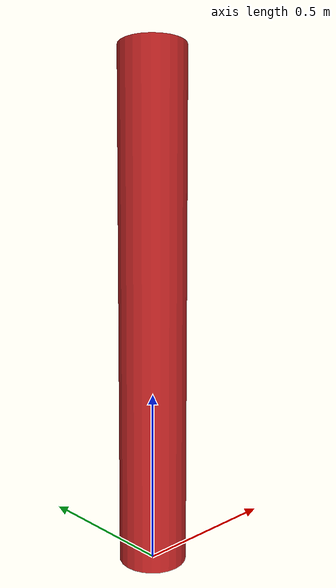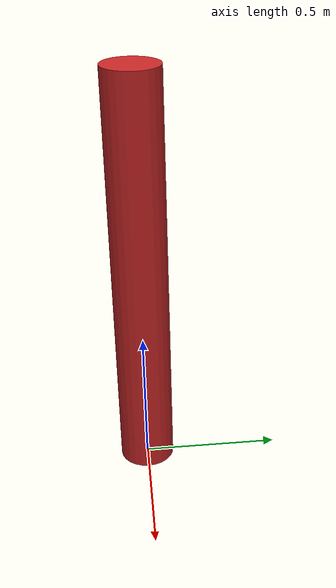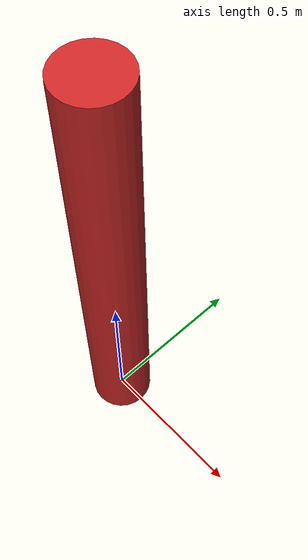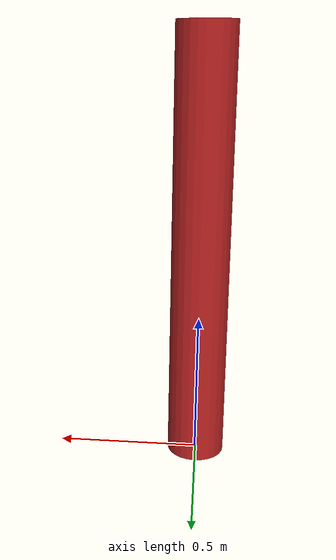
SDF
<?xml version="1.0" ?>
<sdf version="1.5">

<model name="actor_model">
  <pose>0 0 0.75 0 0 0</pose>
  <link name="cylinder_link">
  <visual name="cylinder_visual">
  <geometry>
    <cylinder>
      <radius>0.1</radius>
      <length>1.5</length>
    </cylinder>
  </geometry>
  <material>
    <script>
      <name>Gazebo/Red</name>
      <uri>file://media/materials/scripts/gazebo.material</uri>
    </script>
  </material>
  </visual>
  <collision name="cylinder_collision">
  <geometry>
    <cylinder>
      <radius>0.1</radius>
      <length>1.5</length>
    </cylinder>
  </geometry>
  </collision>
  </link>
</model>

</sdf>
